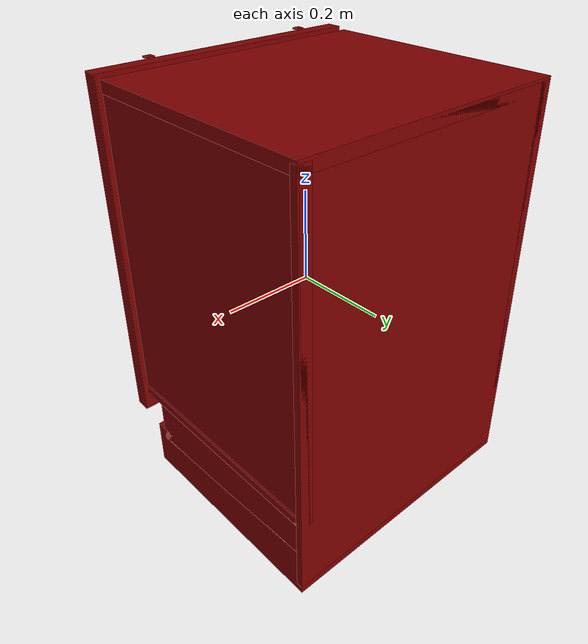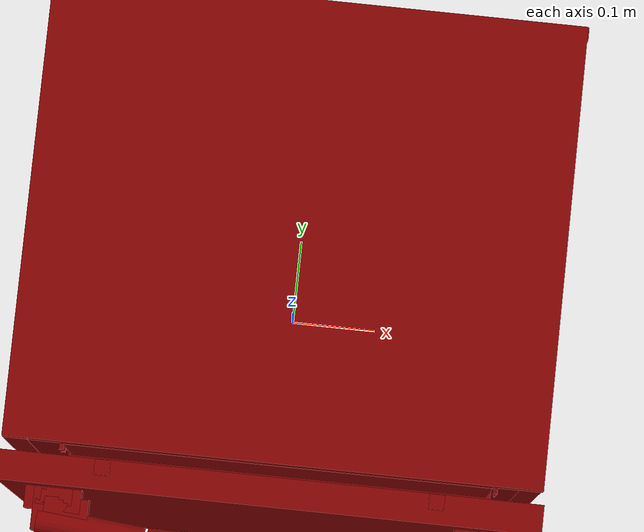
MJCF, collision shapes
<?xml version='1.0' encoding='UTF-8'?>
<mujoco model="model">
  <option timestep="0.002" gravity="0.0 0.0 -9.81"/>
  <compiler angle="radian"/>
  <asset>
    <mesh file="visuals/button_lock.obj" name="button_lock_vis"/>
    <mesh file="visuals/button_power.obj" name="button_power_vis"/>
    <mesh file="visuals/Body001.obj" name="Body001_vis"/>
    <mesh file="visuals/door.obj" name="door_vis"/>
    <mesh file="visuals/rack0.obj" name="rack0_vis"/>
    <mesh file="visuals/rack1.obj" name="rack1_vis"/>
    <texture file="visuals/T_BC001.png" name="Body001_material" type="2d"/>
    <material name="Body001_material" rgba="1 1 1 1.0" texture="Body001_material" shininess="0.2512328028678894" specular="0.3103448502657381"/>
    <texture file="visuals/T_BC001.png" name="door_material" type="2d"/>
    <material name="door_material" rgba="1 1 1 1.0" texture="door_material" shininess="0.2512328028678894" specular="0.3103448502657381"/>
    <texture file="visuals/T_BC001.png" name="button_lock_material" type="2d"/>
    <material name="button_lock_material" rgba="1 1 1 1.0" texture="button_lock_material" shininess="0.2512328028678894" specular="0.3103448502657381"/>
    <texture file="visuals/T_BC001.png" name="button_power_material" type="2d"/>
    <material name="button_power_material" rgba="1 1 1 1.0" texture="button_power_material" shininess="0.2512328028678894" specular="0.3103448502657381"/>
    <texture file="visuals/T_BC001.png" name="rack0_material" type="2d"/>
    <material name="rack0_material" rgba="1 1 1 1.0" texture="rack0_material" shininess="0.2512328028678894" specular="0.81"/>
    <texture file="visuals/T_BC001.png" name="rack1_material" type="2d"/>
    <material name="rack1_material" rgba="1 1 1 1.0" texture="rack1_material" shininess="0.2512328028678894" specular="0.81"/>
  </asset>
  <default>
    <default class="visual">
      <geom conaffinity="0" contype="0" group="1" type="mesh"/>
    </default>
    <default class="collision">
      <geom group="0" rgba="0.5 0 0 0.5"/>
    </default>
    <default class="spawn">
      <geom group="0" rgba="1 1 1 0.5" contype="0" conaffinity="0"/>
      <site group="0" rgba="1 1 1 0.5"/>
    </default>
    <default class="region">
      <geom group="1" conaffinity="0" contype="0" rgba="0 1 0 0"/>
    </default>
  </default>
  <worldbody>
    <body>
      <body name="object">
        <geom mesh="Body001_vis" type="mesh" solimp="0.998 0.998 0.001" solref="0.001 1" friction="0.95 0.3 0.1" class="visual" material="Body001_material"/>
        <geom class="collision" type="box" pos="0.00029417 0.07328099 -0.39501620" size="0.3009321391582489 0.24403943121433258 0.05291081219911575" quat="1.0 0.0 0.0 0.0"/>
        <geom class="collision" type="box" pos="-0.00076243 0.05632151 0.42135128" size="0.30047422647476196 0.26099902391433716 0.012723494321107864" quat="1.0 0.0 0.0 0.0"/>
        <geom class="collision" type="box" pos="0.28546664 0.05578600 0.07878324" size="0.011960831470787525 0.26153454184532166 0.3489367961883545" quat="1.0 0.0 0.0 0.0"/>
        <geom class="collision" type="box" pos="-0.00000517 0.31023428 -0.00255796" size="0.3012315034866333 0.007086256518959999 0.430277943611145" quat="1.0 0.0 0.0 0.0"/>
        <geom class="collision" type="box" pos="-0.28707191 0.05578600 0.07878324" size="0.013566008768975735 0.26153454184532166 0.3489367961883545" quat="1.0 0.0 0.0 0.0"/>
        <geom class="collision" type="box" pos="0.00029417 0.08525718 -0.31731966" size="0.3009321391582489 0.23206323385238647 0.0508718378841877" quat="1.0 0.0 0.0 0.0"/>
        <geom class="collision" type="box" pos="-0.00000518 0.05632141 -0.26035485" size="0.3012315034866333 0.26099902391433716 0.009799429215490818" quat="1.0 0.0 0.0 0.0"/>
        <geom class="collision" type="box" pos="-0.27701229 0.04340295 0.34653520" size="0.013169663026928902 0.2292359173297882 0.005914244335144758" quat="1.0 0.0 0.0 0.0"/>
        <geom class="collision" type="box" pos="-0.27701229 0.04340295 0.31398350" size="0.013169663026928902 0.2292359173297882 0.005914244335144758" quat="1.0 0.0 0.0 0.0"/>
        <geom class="collision" type="box" pos="-0.27679080 0.26754209 0.33028286" size="0.013391165062785149 0.005096788052469492 0.011809350922703743" quat="1.0 0.0 0.0 0.0"/>
        <geom class="collision" type="box" pos="-0.27936542 0.25883684 0.33028286" size="0.010816534981131554 0.005096788052469492 0.011809350922703743" quat="1.0 0.0 0.0 0.0"/>
        <geom class="collision" type="box" pos="-0.27892971 0.25883684 0.16583746" size="0.010816534981131554 0.005096788052469492 0.016891485080122948" quat="1.0 0.0 0.0 0.0"/>
        <geom class="collision" type="box" pos="-0.27864802 0.26754209 0.16583746" size="0.011098233982920647 0.005096788052469492 0.016891485080122948" quat="1.0 0.0 0.0 0.0"/>
        <geom class="collision" type="box" pos="-0.27712440 0.04684454 0.14532323" size="0.009106027893722057 0.22579433023929596 0.005046974401921034" quat="1.0 0.0 0.0 0.0"/>
        <geom class="collision" type="box" pos="-0.27696317 0.04684454 0.18706336" size="0.009267290122807026 0.22579433023929596 0.0045092664659023285" quat="1.0 0.0 0.0 0.0"/>
        <geom class="collision" type="box" pos="0.27618822 0.04684454 0.18771903" size="0.005342652555555105 0.22579433023929596 0.0049775890074670315" quat="1.0 0.0 0.0 0.0"/>
        <geom class="collision" type="box" pos="0.27634948 0.04684454 0.14511335" size="0.005181390326470137 0.22579433023929596 0.004837093409150839" quat="1.0 0.0 0.0 0.0"/>
        <geom class="collision" type="box" pos="0.27954757 0.26754209 0.16572125" size="0.009056074544787407 0.005096788052469492 0.017195038497447968" quat="1.0 0.0 0.0 0.0"/>
        <geom class="collision" type="box" pos="0.28212219 0.25883684 0.16572125" size="0.006481444928795099 0.005096788052469492 0.017195038497447968" quat="1.0 0.0 0.0 0.0"/>
        <geom class="collision" type="box" pos="0.27822283 0.25883684 0.33028286" size="0.010816534981131554 0.005096788052469492 0.011809350922703743" quat="1.0 0.0 0.0 0.0"/>
        <geom class="collision" type="box" pos="0.27564821 0.26754209 0.33028286" size="0.013391165062785149 0.005096788052469492 0.011809350922703743" quat="1.0 0.0 0.0 0.0"/>
        <geom class="collision" type="box" pos="0.27586970 0.04340295 0.31398350" size="0.013169663026928902 0.2292359173297882 0.005914244335144758" quat="1.0 0.0 0.0 0.0"/>
        <geom class="collision" type="box" pos="0.27586970 0.04340295 0.34653520" size="0.013169663026928902 0.2292359173297882 0.005914244335144758" quat="1.0 0.0 0.0 0.0"/>
        <geom class="collision" type="box" pos="-0.27892971 0.26000974 -0.09731040" size="0.010816534981131554 0.003923878073692322 0.016891485080122948" quat="1.0 0.0 0.0 0.0"/>
        <geom class="collision" type="box" pos="-0.27864802 0.26754209 -0.09731040" size="0.011098233982920647 0.005096788052469492 0.016891485080122948" quat="1.0 0.0 0.0 0.0"/>
        <geom class="collision" type="box" pos="-0.27712440 0.04684454 -0.11782464" size="0.009106027893722057 0.22579433023929596 0.005046974401921034" quat="1.0 0.0 0.0 0.0"/>
        <geom class="collision" type="box" pos="-0.27696317 0.04684454 -0.07608451" size="0.009267290122807026 0.22579433023929596 0.0045092664659023285" quat="1.0 0.0 0.0 0.0"/>
        <geom class="collision" type="box" pos="0.27603841 0.04684454 -0.07522218" size="0.0054924688301980495 0.22579433023929596 0.0049775876104831696" quat="1.0 0.0 0.0 0.0"/>
        <geom class="collision" type="box" pos="0.27619967 0.04684454 -0.11782787" size="0.005331206601113081 0.22579433023929596 0.00483709154650569" quat="1.0 0.0 0.0 0.0"/>
        <geom class="collision" type="box" pos="0.27954757 0.26754209 -0.09721996" size="0.009056074544787407 0.005096788052469492 0.017195038497447968" quat="1.0 0.0 0.0 0.0"/>
        <geom class="collision" type="box" pos="0.28212219 0.25883684 -0.09721996" size="0.006481444928795099 0.005096788052469492 0.017195038497447968" quat="1.0 0.0 0.0 0.0"/>
        <geom class="collision" type="box" pos="0.00066126 0.28484437 -0.00255796" size="0.018991000950336456 0.0074838194996118546 0.430277943611145" quat="1.0 0.0 0.0 0.0"/>
        <body name="door">
          <joint axis="1.0 0.0 0.0" pos="-2e-08 -0.2533669673974037 -0.33005846221862795" limited="true" name="door_joint" range="0.0 0.5735987755982988" type="hinge" damping="1" frictionloss="10" armature="1" stiffness="2"/>
          <geom mesh="door_vis" type="mesh" solimp="0.998 0.998 0.001" solref="0.001 1" friction="0.95 0.3 0.1" class="visual" material="door_material"/>
          <geom class="collision" type="cylinder" pos="0.19631019 -0.29907158 0.39731550" size="0.01735132746398449 0.060629162937402725" quat="0.7062416076660156 -0.03496948629617691 0.7062415480613708 0.03496948257088661" name="door_handle_2"/>
          <geom class="collision" type="cylinder" pos="-0.19515961 -0.29866976 0.39731550" size="0.01735132746398449 0.059862907975912094" quat="0.7062416076660156 0.03496948629617691 0.7062415480613708 -0.03496948257088661" name="door_handle_1"/>
          <geom class="collision" type="box" pos="0.23335938 -0.27898762 0.39746287" size="0.026319457218050957 0.024345053359866142 0.012857450172305107" quat="1.0 0.0 0.0 0.0"/>
          <geom class="collision" type="box" pos="0.22132823 -0.28404731 0.39746287" size="0.024539422243833542 0.019285371527075768 0.012857450172305107" quat="1.0 0.0 0.0 0.0"/>
          <geom class="collision" type="box" pos="0.24247786 -0.26710165 0.39746287" size="0.026319457218050957 0.012459082528948784 0.012857450172305107" quat="1.0 0.0 0.0 0.0"/>
          <geom class="collision" type="box" pos="-0.00000002 -0.23670320 0.05462014" size="0.30156058073043823 0.016663767397403717 0.38467860221862793" quat="1.0 0.0 0.0 0.0" name="door_main"/>
          <geom class="collision" type="box" pos="-0.23421580 -0.27898762 0.39746287" size="0.026319457218050957 0.024345053359866142 0.012857450172305107" quat="1.0 0.0 0.0 0.0"/>
          <geom class="collision" type="box" pos="-0.22348009 -0.28404731 0.39746287" size="0.024539422243833542 0.019285371527075768 0.012857450172305107" quat="1.0 0.0 0.0 0.0"/>
          <geom class="collision" type="box" pos="-0.24415970 -0.26710165 0.39746287" size="0.026319457218050957 0.012459082528948784 0.012857450172305107" quat="1.0 0.0 0.0 0.0"/>
          <geom class="collision" type="cylinder" pos="-0.00026742 -0.30440718 0.39734283" size="0.016833096742630005 0.13011766970157623" quat="0.7071068286895752 0.0 -0.7071067690849304 0.0" name="door_handle_main"/>
          <body name="button_lock">
            <joint axis="0.0 0.0 -1.0" pos="0.18303400 -0.22955389 0.44712066" limited="true" name="button_lock_joint" range="0.0 0.0015" type="slide" damping="1" frictionloss="1" armature=".01" springref="-1" stiffness="4"/>
            <geom mesh="button_lock_vis" type="mesh" solimp="0.998 0.998 0.001" solref="0.001 1" friction="0.95 0.3 0.1" class="visual" material="button_lock_material"/>
            <geom class="collision" type="box" pos="0.18298596 -0.22957662 0.44871676" size="0.00852269772440195 0.00852269772440195 0.0017354871379211545" quat="1.0 0.0 0.0 0.0"/>
          </body>
          <body name="button_power">
            <joint axis="0.0 0.0 -1.0" pos="-0.18628043 -0.22955389 0.44712066" limited="true" name="button_power_joint" range="0.0 0.0015" type="slide" damping="1" frictionloss="1" armature=".01" springref="-1" stiffness="4"/>
            <geom mesh="button_power_vis" type="mesh" solimp="0.998 0.998 0.001" solref="0.001 1" friction="0.95 0.3 0.1" class="visual" material="button_power_material"/>
            <geom class="collision" type="box" pos="-0.18621622 -0.22957662 0.44871676" size="0.00852269772440195 0.00852269772440195 0.0017354871379211545" quat="1.0 0.0 0.0 0.0"/>
          </body>
        </body>
        <body name="rack0">
          <geom class="region" name="reg_rack0" type="box" pos="-0.00014389000000000762 0.03043224 -0.026006825000000004" size="0.24410039 0.19327739 0.103825535"/>
          <joint axis="0.0 -1.0 0.0" pos="0.00002422 0.03081315 -0.08415386" limited="true" name="rack0_joint" range="0.0 0.09" type="slide" damping="1" frictionloss="1" armature=".01" stiffness="0.05"/>
          <geom mesh="rack0_vis" type="mesh" solimp="0.998 0.998 0.001" solref="0.001 1" friction="0.95 0.3 0.1" class="visual" material="rack0_material"/>
          <geom class="collision" type="box" pos="-0.07983516 -0.03449736 -0.14929544" size="0.0009215290774591267 0.006419182289391756 0.002024671994149685" quat="1.0 0.0 0.0 0.0"/>
          <geom class="collision" type="box" pos="-0.08394356 -0.03449736 -0.14755120" size="0.004006793722510338 0.006419182755053043 0.0005324396188370883" quat="1.0 0.0 0.0 0.0"/>
          <geom class="collision" type="box" pos="-0.15429580 -0.05028968 -0.11694812" size="0.09347943216562271 0.002516882959753275 0.04563521966338158" quat="0.09089885652065277 0.7012399435043335 0.7012398838996887 0.09089892357587814"/>
          <geom class="collision" type="box" pos="-0.08175866 0.13373846 -0.09997887" size="0.09813521057367325 0.002516882959753275 0.04563521593809128" quat="0.09341192990541458 -0.7009094953536987 -0.7009096145629883 0.0934118703007698"/>
          <geom class="collision" type="box" pos="0.05957322 0.03249620 -0.10229826" size="0.17156313359737396 0.002516882261261344 0.04563521593809128" quat="0.09341192990541458 -0.7009094953536987 -0.7009096145629883 0.0934118703007698"/>
          <geom class="collision" type="box" pos="0.19291317 0.05567762 -0.12249402" size="0.1869610697031021 0.002516882959753275 0.04670282453298569" quat="0.1831398904323578 0.6829785704612732 0.682978630065918 0.18313990533351898"/>
          <geom class="collision" type="box" pos="0.23743968 0.04642402 -0.16426477" size="0.022970160469412804 0.21411961317062378 0.0026653041131794453" quat="1.0 0.0 0.0 0.0"/>
          <geom class="collision" type="box" pos="0.20247936 0.04642401 -0.15544653" size="0.21413519978523254 0.0025168831925839186 0.028035128489136696" quat="0.3555333912372589 0.6112250089645386 0.6112250089645386 0.3555334210395813"/>
          <geom class="collision" type="box" pos="0.15037882 0.04642402 -0.15534444" size="0.21413518488407135 0.0025168827269226313 0.021187733858823776" quat="0.6499353051185608 0.27853918075561523 0.2785392105579376 0.6499353051185608"/>
          <geom class="collision" type="box" pos="0.11886489 0.04642401 -0.15607500" size="0.21413519978523254 0.0025168831925839186 0.025858500972390175" quat="0.4052272140979767 0.579474687576294 0.579474687576294 0.4052272439002991"/>
          <geom class="collision" type="box" pos="0.00046990 0.04594428 -0.14755915" size="0.09508145600557327 0.21459941565990448 0.002690638415515423" quat="1.0 0.0 0.0 0.0"/>
          <geom class="collision" type="box" pos="-0.11756045 0.04642401 -0.15587850" size="0.21413519978523254 0.0025168831925839186 0.0251455157995224" quat="0.5795987844467163 0.4050496518611908 0.4050496816635132 0.5795987844467163"/>
          <geom class="collision" type="box" pos="-0.04980827 0.02324805 -0.15690895" size="0.013340570963919163 0.006175429560244083 0.006049413233995438" quat="1.0 0.0 0.0 0.0"/>
          <geom class="collision" type="box" pos="-0.14897253 0.04642402 -0.15609186" size="0.21413518488407135 0.0025168827269226313 0.02121863141655922" quat="0.279901921749115 0.649349570274353 0.6493496298789978 0.27990207076072693"/>
          <geom class="collision" type="box" pos="-0.20256023 0.04642401 -0.15631652" size="0.21413519978523254 0.0025168827269226313 0.026395291090011597" quat="0.6152599453926086 0.34850409626960754 0.3485041558742523 0.6152600646018982"/>
          <geom class="collision" type="box" pos="-0.23729941 0.04642401 -0.16366808" size="0.023139100521802902 0.21411985158920288 0.0025167774874716997" quat="1.0 0.0 0.0 0.0"/>
          <geom class="collision" type="box" pos="0.25844225 0.04642397 -0.07589085" size="0.00708431750535965 0.21411994099617004 0.08800740540027618" quat="1.0 0.0 0.0 0.0"/>
          <geom class="collision" type="box" pos="-0.00009505 -0.17338634 -0.07589085" size="0.263395220041275 0.004776543006300926 0.08800744265317917" quat="1.0 0.0 0.0 0.0"/>
          <geom class="collision" type="box" pos="-0.25975969 0.04642401 -0.07589085" size="0.005382630508393049 0.21412010490894318 0.08800748735666275" quat="1.0 0.0 0.0 0.0"/>
          <geom class="collision" type="box" pos="0.16230601 0.25682986 -0.07589085" size="0.09588821232318878 0.0052562495693564415 0.08800752460956573" quat="1.0 0.0 0.0 0.0"/>
          <geom class="collision" type="box" pos="0.05490205 0.24349350 -0.07092467" size="0.018606767058372498 0.005256484728306532 0.08341021835803986" quat="0.3173389434814453 0.0 -0.0 -0.9483121633529663"/>
          <geom class="collision" type="box" pos="-0.00184746 0.23558646 -0.07589085" size="0.04493517056107521 0.00420778663828969 0.08800756931304932" quat="1.0 0.0 0.0 0.0"/>
          <geom class="collision" type="box" pos="-0.05877124 0.24720354 -0.07092467" size="0.018606767058372498 0.005256484728306532 0.08341021835803986" quat="0.9204282760620117 0.0 -0.0 -0.3909115195274353"/>
          <geom class="collision" type="box" pos="-0.08829404 -0.03449736 -0.14398267" size="0.0006814482621848583 0.006419182289391756 0.004163840319961309" quat="1.0 0.0 0.0 0.0"/>
          <geom class="collision" type="box" pos="-0.16545722 0.25682986 -0.07589085" size="0.09588833153247833 0.00525625329464674 0.08800765126943588" quat="1.0 0.0 0.0 0.0"/>
          <geom class="collision" type="box" pos="-0.02890452 0.04324955 -0.15910273" size="0.009459958411753178 0.18434371054172516 0.009459900669753551" quat="1.0 0.0 0.0 0.0"/>
          <geom class="collision" type="box" pos="0.26040110 0.09256986 -0.08043865" size="0.0016526376130059361 0.1631735861301422 0.009929639287292957" quat="1.0 0.0 0.0 0.0"/>
          <geom class="collision" type="box" pos="0.26043624 -0.08031923 -0.10745059" size="0.0016174936899915338 0.010302397422492504 0.0369400829076767" quat="1.0 0.0 0.0 0.0"/>
          <geom class="collision" type="box" pos="0.26696804 -0.04438775 -0.08228123" size="0.0054283360950648785 0.005095592699944973 0.001464014989323914" quat="1.0 0.0 0.0 0.0"/>
          <geom class="collision" type="box" pos="0.26719877 -0.04438775 -0.11026179" size="0.005197575315833092 0.005095594096928835 0.001811028691008687" quat="1.0 0.0 0.0 0.0"/>
          <geom class="collision" type="box" pos="0.26719877 -0.04786528 -0.09581838" size="0.005197576712816954 0.0016182493418455124 0.013074900023639202" quat="1.0 0.0 0.0 0.0"/>
          <geom class="collision" type="box" pos="0.26726469 0.10136647 -0.08510555" size="0.004186698235571384 0.1479000300168991 0.0017828861018642783" quat="1.0 0.0 0.0 0.0"/>
          <geom class="collision" type="box" pos="0.26431802 0.08270192 -0.06860362" size="0.005861997604370117 0.17304180562496185 0.002146468497812748" quat="1.0 0.0 0.0 0.0"/>
          <geom class="collision" type="box" pos="0.26627210 0.10136647 -0.08902053" size="0.003194267163053155 0.14790011942386627 0.002412942936643958" quat="1.0 0.0 0.0 0.0"/>
          <geom class="collision" type="box" pos="-0.04980827 -0.03433228 -0.15690895" size="0.013340570963919163 0.006175429560244083 0.006049413233995438" quat="1.0 0.0 0.0 0.0"/>
          <geom class="collision" type="box" pos="0.26627210 0.10136647 -0.10696460" size="0.003194268560037017 0.14790022373199463 0.00241294433362782" quat="1.0 0.0 0.0 0.0"/>
          <geom class="collision" type="box" pos="0.26627210 -0.03862338 -0.09800271" size="0.003194269258528948 0.007917537353932858 0.007178285624831915" quat="1.0 0.0 0.0 0.0"/>
          <geom class="collision" type="box" pos="0.26627210 0.11469522 -0.09800271" size="0.003194269957020879 0.13459159433841705 0.007178287021815777" quat="1.0 0.0 0.0 0.0"/>
          <geom class="collision" type="box" pos="0.26381886 -0.02690836 -0.09800271" size="0.000741118798032403 0.007917542941868305 0.007178288418799639" quat="1.0 0.0 0.0 0.0"/>
          <geom class="collision" type="box" pos="0.26688278 0.10134265 -0.11018511" size="0.004881561268121004 0.14793668687343597 0.0018877162365242839" quat="1.0 0.0 0.0 0.0"/>
          <geom class="collision" type="box" pos="0.26283953 0.02140599 -0.10904942" size="0.004090850707143545 0.016424477100372314 0.01875297538936138" quat="1.0 0.0 0.0 0.0"/>
          <geom class="collision" type="box" pos="0.26283953 0.06417835 -0.10904942" size="0.004090852104127407 0.024293581023812294 0.01875298097729683" quat="1.0 0.0 0.0 0.0"/>
          <geom class="collision" type="box" pos="0.26283953 0.10974296 -0.10904942" size="0.004090853501111269 0.018582142889499664 0.018752986565232277" quat="1.0 0.0 0.0 0.0"/>
          <geom class="collision" type="box" pos="0.26283953 0.19360924 -0.10904942" size="0.004090854898095131 0.062086645513772964 0.018752992153167725" quat="1.0 0.0 0.0 0.0"/>
          <geom class="collision" type="box" pos="-0.26286417 0.19360924 -0.10904942" size="0.0040656449273228645 0.06208665668964386 0.018752997741103172" quat="1.0 0.0 0.0 0.0"/>
          <geom class="collision" type="box" pos="-0.08829404 0.02308297 -0.14398267" size="0.0006814482621848583 0.006419182289391756 0.004163840319961309" quat="1.0 0.0 0.0 0.0"/>
          <geom class="collision" type="box" pos="-0.26286417 0.10974296 -0.10904942" size="0.004065647721290588 0.018582165241241455 0.018753010779619217" quat="1.0 0.0 0.0 0.0"/>
          <geom class="collision" type="box" pos="-0.26286417 0.06417835 -0.10904942" size="0.00406564911827445 0.02429361455142498 0.018753016367554665" quat="1.0 0.0 0.0 0.0"/>
          <geom class="collision" type="box" pos="-0.26286417 0.02140599 -0.10904942" size="0.004065650515258312 0.016424521803855896 0.018753021955490112" quat="1.0 0.0 0.0 0.0"/>
          <geom class="collision" type="box" pos="-0.26670945 0.10134265 -0.11018511" size="0.004658401012420654 0.1479371339082718 0.0018877197289839387" quat="1.0 0.0 0.0 0.0"/>
          <geom class="collision" type="box" pos="-0.26386875 -0.02690836 -0.09800271" size="0.0007411208935081959 0.007917576469480991 0.007178305182605982" quat="1.0 0.0 0.0 0.0"/>
          <geom class="collision" type="box" pos="-0.26632199 0.11469522 -0.09800271" size="0.0031942797359079123 0.1345922350883484 0.007178306579589844" quat="1.0 0.0 0.0 0.0"/>
          <geom class="collision" type="box" pos="-0.26632199 -0.03862339 -0.09800271" size="0.003194280434399843 0.007917582057416439 0.007178307976573706" quat="1.0 0.0 0.0 0.0"/>
          <geom class="collision" type="box" pos="-0.26632199 0.10136647 -0.10696460" size="0.003194281132891774 0.1479010283946991 0.0024129569064825773" quat="1.0 0.0 0.0 0.0"/>
          <geom class="collision" type="box" pos="-0.26632199 0.10136647 -0.08902053" size="0.003194281831383705 0.14790107309818268 0.0024129576049745083" quat="1.0 0.0 0.0 0.0"/>
          <geom class="collision" type="box" pos="-0.26274502 0.08270192 -0.06885890" size="0.0042391689494252205 0.17304284870624542 0.0018912492087110877" quat="1.0 0.0 0.0 0.0"/>
          <geom class="collision" type="box" pos="-0.08394356 0.02308297 -0.14755120" size="0.004006793722510338 0.006419182755053043 0.0005324396188370883" quat="1.0 0.0 0.0 0.0"/>
          <geom class="collision" type="box" pos="-0.26731455 0.10136647 -0.08510555" size="0.004186734557151794 0.14790120720863342 0.0017828952986747026" quat="1.0 0.0 0.0 0.0"/>
          <geom class="collision" type="box" pos="-0.26724866 -0.04786528 -0.09581838" size="0.005197616294026375 0.0016182592371478677 0.013074979186058044" quat="1.0 0.0 0.0 0.0"/>
          <geom class="collision" type="box" pos="-0.26724866 -0.04438775 -0.11026179" size="0.005197617691010237 0.00509563647210598 0.0018110392848029733" quat="1.0 0.0 0.0 0.0"/>
          <geom class="collision" type="box" pos="-0.26701790 -0.04438775 -0.08228123" size="0.005428381264209747 0.005095637869089842 0.0014640262816101313" quat="1.0 0.0 0.0 0.0"/>
          <geom class="collision" type="box" pos="-0.26048613 -0.08031923 -0.10745059" size="0.001617505680769682 0.01030249334871769 0.03694046661257744" quat="1.0 0.0 0.0 0.0"/>
          <geom class="collision" type="box" pos="-0.26045099 0.09256986 -0.08043865" size="0.0016526503022760153 0.16317521035671234 0.00992974080145359" quat="1.0 0.0 0.0 0.0"/>
          <geom class="collision" type="box" pos="-0.00507184 -0.13846746 -0.15294902" size="0.03811417520046234 0.006508534774184227 0.004481990821659565" quat="1.0 0.0 0.0 0.0"/>
          <geom class="collision" type="box" pos="-0.00507184 -0.14310893 -0.15940380" size="0.03811417520046234 0.006508534774184227 0.010936778038740158" quat="1.0 0.0 0.0 0.0"/>
          <geom class="collision" type="box" pos="-0.02832828 0.07346234 -0.17542528" size="0.19184672832489014 0.012827771715819836 0.005360372830182314" quat="1.0 0.0 0.0 0.0"/>
          <geom class="collision" type="box" pos="-0.06689170 -0.11968148 -0.15288420" size="0.013266862370073795 0.006309157703071833 0.002024671994149685" quat="1.0 0.0 0.0 0.0"/>
          <geom class="collision" type="box" pos="-0.07983516 0.02308297 -0.14929544" size="0.0009215290774591267 0.006419182289391756 0.002024671994149685" quat="1.0 0.0 0.0 0.0"/>
          <geom class="collision" type="box" pos="-0.07983516 -0.11965042 -0.14929544" size="0.0009215290774591267 0.006419182289391756 0.002024671994149685" quat="1.0 0.0 0.0 0.0"/>
          <geom class="collision" type="box" pos="-0.08394356 -0.11965042 -0.14755120" size="0.004006793722510338 0.006419182755053043 0.0005324396188370883" quat="1.0 0.0 0.0 0.0"/>
          <geom class="collision" type="box" pos="-0.08829404 -0.11965042 -0.14398267" size="0.0006814482621848583 0.006419182289391756 0.004163840319961309" quat="1.0 0.0 0.0 0.0"/>
          <geom class="collision" type="box" pos="-0.04980827 -0.11948535 -0.15690895" size="0.013340570963919163 0.006175429094582796 0.006049413233995438" quat="1.0 0.0 0.0 0.0"/>
          <geom class="collision" type="box" pos="-0.04980827 -0.08592123 -0.15690895" size="0.013340570963919163 0.006175429560244083 0.006049413233995438" quat="1.0 0.0 0.0 0.0"/>
          <geom class="collision" type="box" pos="-0.08829404 -0.08608630 -0.14398267" size="0.0006814482621848583 0.006419182289391756 0.004163840319961309" quat="1.0 0.0 0.0 0.0"/>
          <geom class="collision" type="box" pos="-0.08394356 -0.08608630 -0.14755120" size="0.004006793722510338 0.006419182755053043 0.0005324396188370883" quat="1.0 0.0 0.0 0.0"/>
          <geom class="collision" type="box" pos="-0.07983516 -0.08608630 -0.14929544" size="0.0009215290774591267 0.006419182289391756 0.002024671994149685" quat="1.0 0.0 0.0 0.0"/>
          <geom class="collision" type="box" pos="-0.06689170 -0.08611735 -0.15288420" size="0.013266862370073795 0.006309157703071833 0.002024671994149685" quat="1.0 0.0 0.0 0.0"/>
          <geom class="collision" type="box" pos="-0.06689170 -0.03452841 -0.15288420" size="0.013266862370073795 0.006309156771749258 0.002024671994149685" quat="1.0 0.0 0.0 0.0"/>
          <geom class="collision" type="box" pos="-0.06689170 0.02305192 -0.15288420" size="0.013266862370073795 0.006309156771749258 0.002024671994149685" quat="1.0 0.0 0.0 0.0"/>
        </body>
        <body name="rack1">
          <geom class="region" name="reg_rack1" type="box" pos="0.00013159000000000087 0.03045771 0.268502315" size="0.2439689 0.193309 0.13629110500000002"/>
          <joint axis="0.0 -1.0 0.0" pos="0.00002422 0.03081315 0.17890155" limited="true" name="rack1_joint" range="0.0 0.24" type="slide" damping="1" frictionloss="1" armature=".01" stiffness="0.05"/>
          <geom mesh="rack1_vis" type="mesh" solimp="0.998 0.998 0.001" solref="0.001 1" friction="0.95 0.3 0.1" class="visual" material="rack1_material"/>
          <geom class="collision" type="box" pos="-0.07983516 -0.03449736 0.11359059" size="0.0009215290774591267 0.006419182289391756 0.002024671994149685" quat="1.0 0.0 0.0 0.0"/>
          <geom class="collision" type="box" pos="-0.08394356 -0.03449736 0.11533483" size="0.004006793722510338 0.006419182755053043 0.0005324396188370883" quat="1.0 0.0 0.0 0.0"/>
          <geom class="collision" type="box" pos="-0.15429580 -0.05028968 0.14593790" size="0.09347943216562271 0.002516882959753275 0.04563521966338158" quat="0.09089885652065277 0.7012399435043335 0.7012398838996887 0.09089892357587814"/>
          <geom class="collision" type="box" pos="-0.08175866 0.13373846 0.16290715" size="0.09813521057367325 0.002516882959753275 0.04563521593809128" quat="0.09341192990541458 -0.7009094953536987 -0.7009096145629883 0.0934118703007698"/>
          <geom class="collision" type="box" pos="0.05957322 0.03249620 0.16058777" size="0.17156313359737396 0.002516882261261344 0.04563521593809128" quat="0.09341192990541458 -0.7009094953536987 -0.7009096145629883 0.0934118703007698"/>
          <geom class="collision" type="box" pos="0.19291317 0.05567762 0.14039200" size="0.1869610697031021 0.002516882959753275 0.04670282453298569" quat="0.1831398904323578 0.6829785704612732 0.682978630065918 0.18313990533351898"/>
          <geom class="collision" type="box" pos="0.23743968 0.04642402 0.09862126" size="0.02297084592282772 0.21412509679794312 0.0026653469540178776" quat="1.0 0.0 0.0 0.0"/>
          <geom class="collision" type="box" pos="0.20172393 0.04642401 0.10786916" size="0.21413519978523254 0.0025168831925839186 0.028035128489136696" quat="0.3555333912372589 0.6112250089645386 0.6112250089645386 0.3555334210395813"/>
          <geom class="collision" type="box" pos="0.15079363 0.04642402 0.10793665" size="0.21413518488407135 0.0025168827269226313 0.021187733858823776" quat="0.6499353051185608 0.27853918075561523 0.2785392105579376 0.6499353051185608"/>
          <geom class="collision" type="box" pos="0.11886489 0.04642401 0.10681103" size="0.21413519978523254 0.0025168831925839186 0.025858500972390175" quat="0.4052272140979767 0.579474687576294 0.579474687576294 0.4052272439002991"/>
          <geom class="collision" type="box" pos="0.00046990 0.04594428 0.11532688" size="0.09508420526981354 0.214604914188385 0.002690724330022931" quat="1.0 0.0 0.0 0.0"/>
          <geom class="collision" type="box" pos="-0.11756045 0.04642401 0.10700753" size="0.21413519978523254 0.0025168831925839186 0.0251455157995224" quat="0.5795987844467163 0.4050496518611908 0.4050496816635132 0.5795987844467163"/>
          <geom class="collision" type="box" pos="-0.04980827 0.02324805 0.10597709" size="0.013340570963919163 0.006175429560244083 0.006049413233995438" quat="1.0 0.0 0.0 0.0"/>
          <geom class="collision" type="box" pos="-0.15019727 0.04642402 0.10795085" size="0.21413518488407135 0.0025168827269226313 0.02121863141655922" quat="0.279901921749115 0.649349570274353 0.6493496298789978 0.27990207076072693"/>
          <geom class="collision" type="box" pos="-0.19848835 0.04642401 0.10901059" size="0.21413519978523254 0.0025168827269226313 0.026395291090011597" quat="0.6152599453926086 0.34850409626960754 0.3485041558742523 0.6152600646018982"/>
          <geom class="collision" type="box" pos="-0.23729941 0.04642401 0.09921794" size="0.02313978597521782 0.2141253501176834 0.0025168205611407757" quat="1.0 0.0 0.0 0.0"/>
          <geom class="collision" type="box" pos="0.25803608 0.04642397 0.18699518" size="0.006678314413875341 0.21412542462348938 0.08801014721393585" quat="1.0 0.0 0.0 0.0"/>
          <geom class="collision" type="box" pos="-0.00009505 -0.17338634 0.18699518" size="0.26340070366859436 0.004776628687977791 0.08801019191741943" quat="1.0 0.0 0.0 0.0"/>
          <geom class="collision" type="box" pos="-0.25970617 0.04642401 0.18699518" size="0.005329441279172897 0.2141255885362625 0.08801022917032242" quat="1.0 0.0 0.0 0.0"/>
          <geom class="collision" type="box" pos="0.16230601 0.25682986 0.18699518" size="0.09589095413684845 0.005256335251033306 0.088010273873806" quat="1.0 0.0 0.0 0.0"/>
          <geom class="collision" type="box" pos="0.05490205 0.24349350 0.19196136" size="0.018606767058372498 0.005256484728306532 0.08341021835803986" quat="0.3173389434814453 0.0 -0.0 -0.9483121633529663"/>
          <geom class="collision" type="box" pos="-0.00184746 0.23558646 0.18699518" size="0.044936541467905045 0.004207872319966555 0.08801031112670898" quat="1.0 0.0 0.0 0.0"/>
          <geom class="collision" type="box" pos="-0.05877124 0.24720354 0.19196136" size="0.018606767058372498 0.005256484728306532 0.08341021835803986" quat="0.9204282760620117 0.0 -0.0 -0.3909115195274353"/>
          <geom class="collision" type="box" pos="-0.08829404 -0.03449736 0.11890337" size="0.0006814482621848583 0.006419182289391756 0.004163840319961309" quat="1.0 0.0 0.0 0.0"/>
          <geom class="collision" type="box" pos="-0.16545722 0.25682986 0.18699518" size="0.0958910807967186 0.005256338976323605 0.08801039308309555" quat="1.0 0.0 0.0 0.0"/>
          <geom class="collision" type="box" pos="-0.02890452 0.04324955 0.10378331" size="0.009459958411753178 0.18434371054172516 0.009459900669753551" quat="1.0 0.0 0.0 0.0"/>
          <geom class="collision" type="box" pos="0.26040110 0.09256986 0.18244737" size="0.001652661245316267 0.16317661106586456 0.009929828345775604" quat="1.0 0.0 0.0 0.0"/>
          <geom class="collision" type="box" pos="0.26043624 -0.08031923 0.15543544" size="0.0016175173223018646 0.010302586480975151 0.036940839141607285" quat="1.0 0.0 0.0 0.0"/>
          <geom class="collision" type="box" pos="0.26696804 -0.04438775 0.18060480" size="0.005428431089967489 0.0050956872291862965 0.001464038621634245" quat="1.0 0.0 0.0 0.0"/>
          <geom class="collision" type="box" pos="0.26719877 -0.04438775 0.15262423" size="0.005197669845074415 0.005095688626170158 0.0018110523233190179" quat="1.0 0.0 0.0 0.0"/>
          <geom class="collision" type="box" pos="0.26719877 -0.04786528 0.16706764" size="0.005197671242058277 0.0016182729741558433 0.013075090013444424" quat="1.0 0.0 0.0 0.0"/>
          <geom class="collision" type="box" pos="0.26726469 0.10136647 0.17778048" size="0.004186792764812708 0.14790306985378265 0.0017829097341746092" quat="1.0 0.0 0.0 0.0"/>
          <geom class="collision" type="box" pos="0.26431802 0.08270192 0.19428241" size="0.005862092133611441 0.1730448305606842 0.0021465157624334097" quat="1.0 0.0 0.0 0.0"/>
          <geom class="collision" type="box" pos="0.26627210 0.10136647 0.17386549" size="0.0031943144276738167 0.14790315926074982 0.00241299020126462" quat="1.0 0.0 0.0 0.0"/>
          <geom class="collision" type="box" pos="-0.04980827 -0.03433228 0.10597709" size="0.013340570963919163 0.006175429560244083 0.006049413233995438" quat="1.0 0.0 0.0 0.0"/>
          <geom class="collision" type="box" pos="0.26627210 0.10136647 0.15592143" size="0.0031943158246576786 0.14790324866771698 0.0024129915982484818" quat="1.0 0.0 0.0 0.0"/>
          <geom class="collision" type="box" pos="0.26627210 -0.03862338 0.16488331" size="0.0031943165231496096 0.007917726412415504 0.007178380154073238" quat="1.0 0.0 0.0 0.0"/>
          <geom class="collision" type="box" pos="0.26627210 0.11469522 0.16488331" size="0.0031943172216415405 0.1345946341753006 0.0071783815510571" quat="1.0 0.0 0.0 0.0"/>
          <geom class="collision" type="box" pos="0.26381886 -0.02690836 0.16488331" size="0.0007411306141875684 0.007917732000350952 0.007178382948040962" quat="1.0 0.0 0.0 0.0"/>
          <geom class="collision" type="box" pos="0.26688278 0.10134265 0.15270091" size="0.004881655797362328 0.14793971180915833 0.0018877398688346148" quat="1.0 0.0 0.0 0.0"/>
          <geom class="collision" type="box" pos="0.26283953 0.02140599 0.15383660" size="0.004090945236384869 0.01642485521733761 0.018753355368971825" quat="1.0 0.0 0.0 0.0"/>
          <geom class="collision" type="box" pos="0.26283953 0.06417835 0.15383660" size="0.004090947099030018 0.024293959140777588 0.018753360956907272" quat="1.0 0.0 0.0 0.0"/>
          <geom class="collision" type="box" pos="0.26283953 0.10974296 0.15383660" size="0.00409094849601388 0.018582521006464958 0.01875336654484272" quat="1.0 0.0 0.0 0.0"/>
          <geom class="collision" type="box" pos="0.26283953 0.19360924 0.15383660" size="0.004090949892997742 0.06208740547299385 0.018753372132778168" quat="1.0 0.0 0.0 0.0"/>
          <geom class="collision" type="box" pos="-0.26286417 0.19360924 0.15383660" size="0.004065739456564188 0.062087416648864746 0.018753377720713615" quat="1.0 0.0 0.0 0.0"/>
          <geom class="collision" type="box" pos="-0.08829404 0.02308297 0.11890337" size="0.0006814482621848583 0.006419182289391756 0.004163840319961309" quat="1.0 0.0 0.0 0.0"/>
          <geom class="collision" type="box" pos="-0.26286417 0.10974296 0.15383660" size="0.004065742250531912 0.018582545220851898 0.01875338889658451" quat="1.0 0.0 0.0 0.0"/>
          <geom class="collision" type="box" pos="-0.26286417 0.06417835 0.15383660" size="0.004065743647515774 0.024293994531035423 0.01875339448451996" quat="1.0 0.0 0.0 0.0"/>
          <geom class="collision" type="box" pos="-0.26286417 0.02140599 0.15383660" size="0.004065745044499636 0.01642490178346634 0.018753400072455406" quat="1.0 0.0 0.0 0.0"/>
          <geom class="collision" type="box" pos="-0.26670945 0.10134265 0.15270091" size="0.004658495541661978 0.14794015884399414 0.0018877433612942696" quat="1.0 0.0 0.0 0.0"/>
          <geom class="collision" type="box" pos="-0.26386875 -0.02690836 0.16488331" size="0.0007411327096633613 0.007917765527963638 0.007178399711847305" quat="1.0 0.0 0.0 0.0"/>
          <geom class="collision" type="box" pos="-0.26632199 0.11469522 0.16488331" size="0.003194327000528574 0.13459526002407074 0.007178401108831167" quat="1.0 0.0 0.0 0.0"/>
          <geom class="collision" type="box" pos="-0.26632199 -0.03862339 0.16488331" size="0.003194327699020505 0.007917771115899086 0.007178402505815029" quat="1.0 0.0 0.0 0.0"/>
          <geom class="collision" type="box" pos="-0.26632199 0.10136647 0.15592143" size="0.0031943286303430796 0.14790405333042145 0.002413004171103239" quat="1.0 0.0 0.0 0.0"/>
          <geom class="collision" type="box" pos="-0.26632199 0.10136647 0.17386549" size="0.0031943293288350105 0.14790409803390503 0.00241300486959517" quat="1.0 0.0 0.0 0.0"/>
          <geom class="collision" type="box" pos="-0.26274502 0.08270192 0.19402712" size="0.004239263478666544 0.17304587364196777 0.0018912728410214186" quat="1.0 0.0 0.0 0.0"/>
          <geom class="collision" type="box" pos="-0.08394356 0.02308297 0.11533483" size="0.004006793722510338 0.006419182755053043 0.0005324396188370883" quat="1.0 0.0 0.0 0.0"/>
          <geom class="collision" type="box" pos="-0.26731455 0.10136647 0.17778048" size="0.004186829552054405 0.14790423214435577 0.0017829189309850335" quat="1.0 0.0 0.0 0.0"/>
          <geom class="collision" type="box" pos="-0.26724866 -0.04786528 0.16706764" size="0.005197710823267698 0.0016182828694581985 0.013075169175863266" quat="1.0 0.0 0.0 0.0"/>
          <geom class="collision" type="box" pos="-0.26724866 -0.04438775 0.15262423" size="0.00519771222025156 0.005095731001347303 0.0018110629171133041" quat="1.0 0.0 0.0 0.0"/>
          <geom class="collision" type="box" pos="-0.26701790 -0.04438775 0.18060480" size="0.005428476259112358 0.005095732398331165 0.0014640499139204621" quat="1.0 0.0 0.0 0.0"/>
          <geom class="collision" type="box" pos="-0.26048613 -0.08031923 0.15543544" size="0.0016175293130800128 0.010302682407200336 0.036941222846508026" quat="1.0 0.0 0.0 0.0"/>
          <geom class="collision" type="box" pos="-0.26045099 0.09256986 0.18244737" size="0.0016526739345863461 0.1631782352924347 0.009929929859936237" quat="1.0 0.0 0.0 0.0"/>
          <geom class="collision" type="box" pos="-0.00507184 -0.13846746 0.10993702" size="0.03811417520046234 0.006508534774184227 0.004481990821659565" quat="1.0 0.0 0.0 0.0"/>
          <geom class="collision" type="box" pos="-0.00507184 -0.14310893 0.10348223" size="0.03811417520046234 0.006508534774184227 0.010936778038740158" quat="1.0 0.0 0.0 0.0"/>
          <geom class="collision" type="box" pos="-0.02832828 0.07346234 0.08746075" size="0.19184672832489014 0.012827771715819836 0.005360372830182314" quat="1.0 0.0 0.0 0.0"/>
          <geom class="collision" type="box" pos="-0.06689170 -0.11968148 0.11000183" size="0.013266862370073795 0.006309157703071833 0.002024671994149685" quat="1.0 0.0 0.0 0.0"/>
          <geom class="collision" type="box" pos="-0.07983516 0.02308297 0.11359059" size="0.0009215290774591267 0.006419182289391756 0.002024671994149685" quat="1.0 0.0 0.0 0.0"/>
          <geom class="collision" type="box" pos="-0.07983516 -0.11965042 0.11359059" size="0.0009215290774591267 0.006419182289391756 0.002024671994149685" quat="1.0 0.0 0.0 0.0"/>
          <geom class="collision" type="box" pos="-0.08394356 -0.11965042 0.11533483" size="0.004006793722510338 0.006419182755053043 0.0005324396188370883" quat="1.0 0.0 0.0 0.0"/>
          <geom class="collision" type="box" pos="-0.08829404 -0.11965042 0.11890337" size="0.0006814482621848583 0.006419182289391756 0.004163840319961309" quat="1.0 0.0 0.0 0.0"/>
          <geom class="collision" type="box" pos="-0.04980827 -0.11948535 0.10597709" size="0.013340570963919163 0.006175429094582796 0.006049413233995438" quat="1.0 0.0 0.0 0.0"/>
          <geom class="collision" type="box" pos="-0.04980827 -0.08592123 0.10597709" size="0.013340570963919163 0.006175429560244083 0.006049413233995438" quat="1.0 0.0 0.0 0.0"/>
          <geom class="collision" type="box" pos="-0.08829404 -0.08608630 0.11890337" size="0.0006814482621848583 0.006419182289391756 0.004163840319961309" quat="1.0 0.0 0.0 0.0"/>
          <geom class="collision" type="box" pos="-0.08394356 -0.08608630 0.11533483" size="0.004006793722510338 0.006419182755053043 0.0005324396188370883" quat="1.0 0.0 0.0 0.0"/>
          <geom class="collision" type="box" pos="-0.07983516 -0.08608630 0.11359059" size="0.0009215290774591267 0.006419182289391756 0.002024671994149685" quat="1.0 0.0 0.0 0.0"/>
          <geom class="collision" type="box" pos="-0.06689170 -0.08611735 0.11000183" size="0.013266862370073795 0.006309157703071833 0.002024671994149685" quat="1.0 0.0 0.0 0.0"/>
          <geom class="collision" type="box" pos="-0.06689170 -0.03452841 0.11000183" size="0.013266862370073795 0.006309156771749258 0.002024671994149685" quat="1.0 0.0 0.0 0.0"/>
          <geom class="collision" type="box" pos="-0.06689170 0.02305192 0.11000183" size="0.013266862370073795 0.006309156771749258 0.002024671994149685" quat="1.0 0.0 0.0 0.0"/>
        </body>
        <geom class="region" name="reg_int" type="box" pos="-0.0006453999999999904 0.06174253499999999 0.079082785" size="0.25807358 0.236694925 0.324919775"/>
        <geom class="region" name="reg_main" type="box" pos="-4.999999997368221e-09 0.03326318 -0.002541155000000017" size="0.302625075 0.28879957 0.448911145"/>
      </body>
    </body>
  </worldbody>
  <actuator>
    <motor name="door_joint_actuator" joint="door_joint" gear="50"/>
    <motor name="rack0_joint_actuator" joint="rack0_joint" gear="50"/>
    <motor name="rack1_joint_actuator" joint="rack1_joint" gear="50"/>
    <motor name="button_lock_joint_actuator" joint="button_lock_joint" gear="0.5"/>
    <motor name="button_power_joint_actuator" joint="button_power_joint" gear="0.5"/>
  </actuator>
</mujoco>
